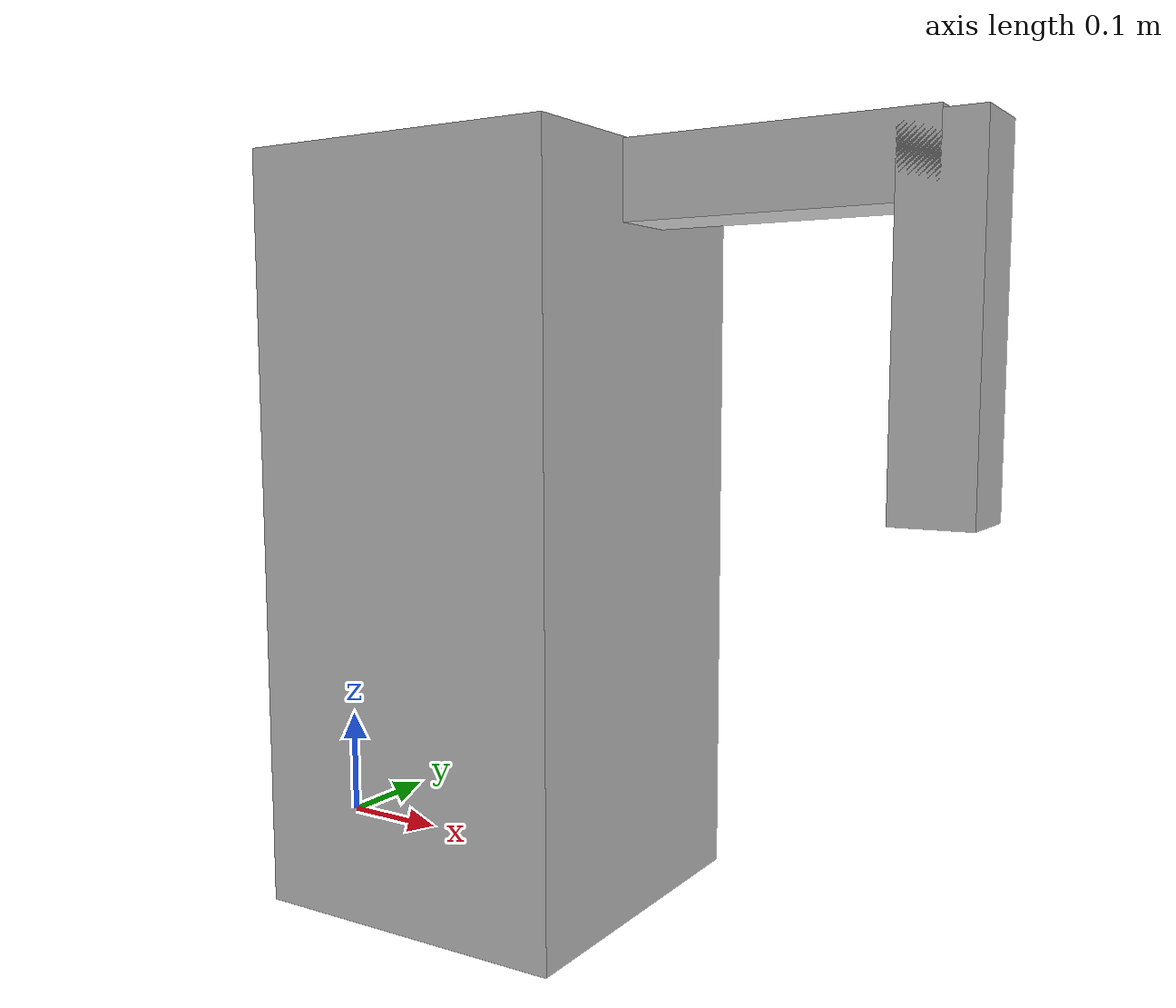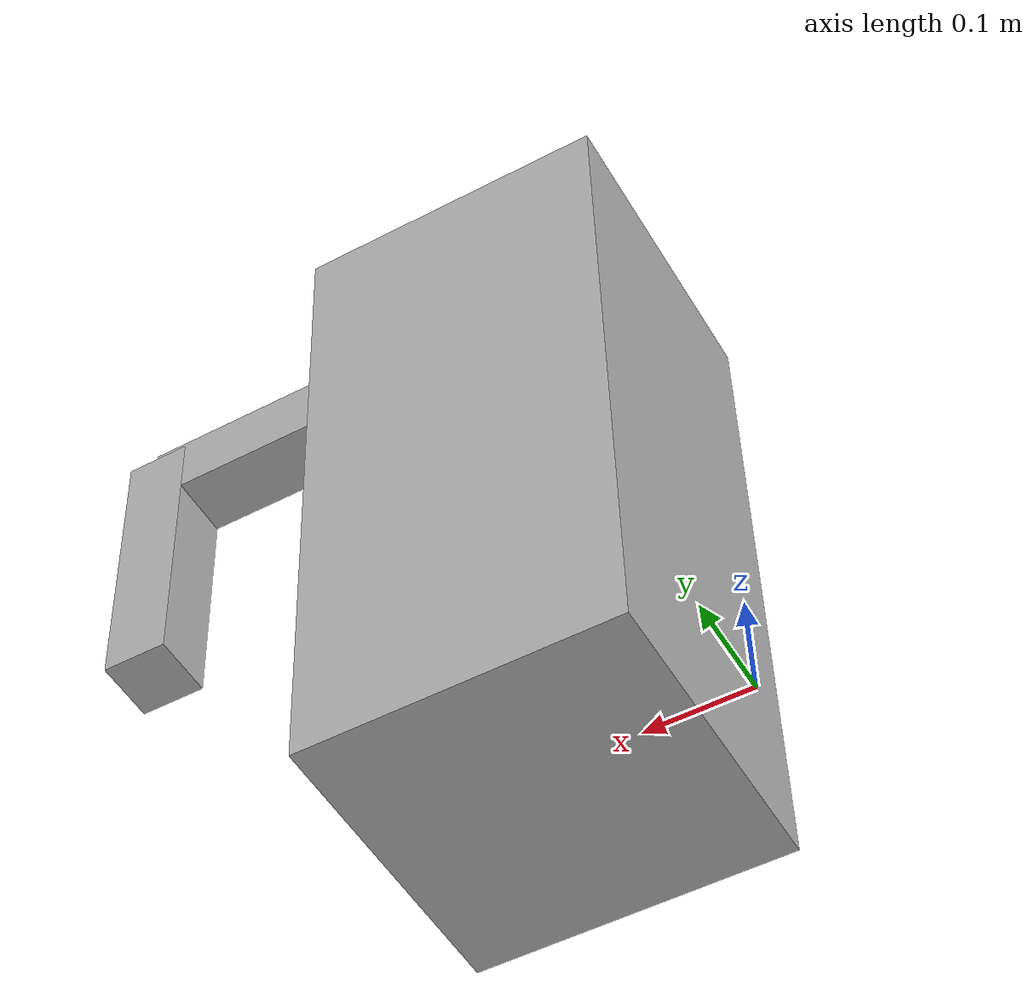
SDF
<?xml version='1.0'?>
<sdf version='1.5'>
  <model name="simple_arm">
    <link name='base'>
      <pose>0.187 0 0.3 0 0 0</pose>

      <inertial>
        <mass>1000.0</mass>
        <pose>-0.03 0 -0.03 0 0 0</pose>
        <inertia>
          <ixx>0.5</ixx>
          <iyy>1.0</iyy>
          <izz>0.1</izz>
        </inertia>
      </inertial>

      <collision name='collision'>
        <geometry>
          <box>
            <size>0.3 0.3 0.67</size>
          </box>
        </geometry>
      </collision>

      <visual name='visual'>
        <geometry>
          <box>
            <size>0.3 0.3 0.67</size>
          </box>
        </geometry>
      </visual>
    </link>
    <link name='arm'>
      <pose>0.45 0 0.6 0 0 0</pose>

      <inertial>
        <mass>0.5</mass>
        <pose>-0.03 0 -0.03 0 0 0</pose>
        <inertia>
          <ixx>0.5</ixx>
          <iyy>1.0</iyy>
          <izz>0.1</izz>
        </inertia>
      </inertial>

      <collision name='collision'>
        <geometry>
          <box>
            <size>0.3 0.067 0.067</size>
          </box>
        </geometry>
      </collision>

      <visual name='visual'>
        <geometry>
          <box>
            <size>0.3 0.067 0.067</size>
          </box>
        </geometry>
      </visual>
    </link>
    <link name='forearm'>
      <pose>0.6 0 0.48 0 0 0</pose>

      <inertial>
        <mass>0.5</mass>
        <pose>-0.03 0 -0.03 0 0 0</pose>
        <inertia>
          <ixx>0.5</ixx>
          <iyy>1.0</iyy>
          <izz>0.1</izz>
        </inertia>
      </inertial>

      <collision name='collision'>
        <geometry>
          <box>
            <size>0.067 0.067 0.3</size>
          </box>
        </geometry>
      </collision>

      <visual name='visual'>
        <geometry>
          <box>
            <size>0.067 0.067 0.3</size>
          </box>
        </geometry>
      </visual>
    </link>
    <joint name="arm_base_joint" type="fixed">
      <parent>base</parent>
      <child>arm</child>

    </joint>
     <joint name="forearm_arm_joint" type="fixed">
      <parent>arm</parent>
      <child>forearm</child>

    </joint>
   <static>0</static>
  </model>
 </sdf>
